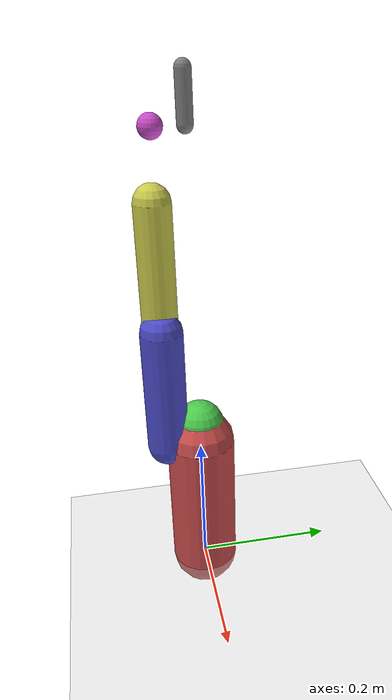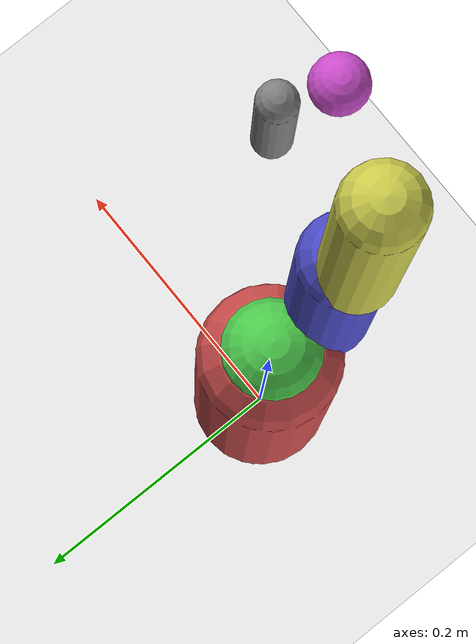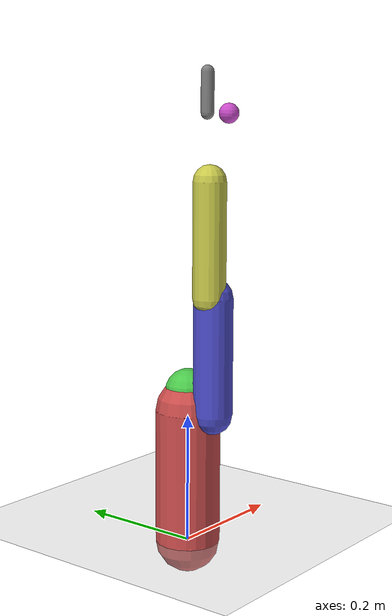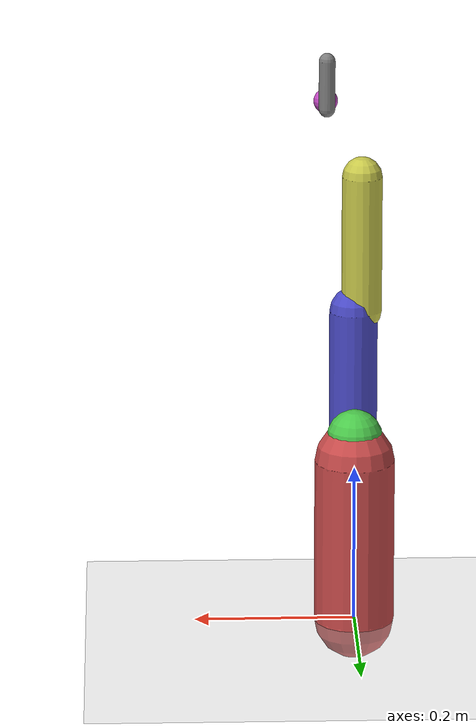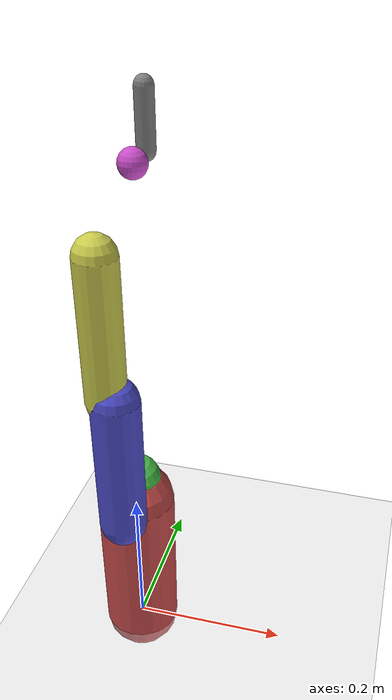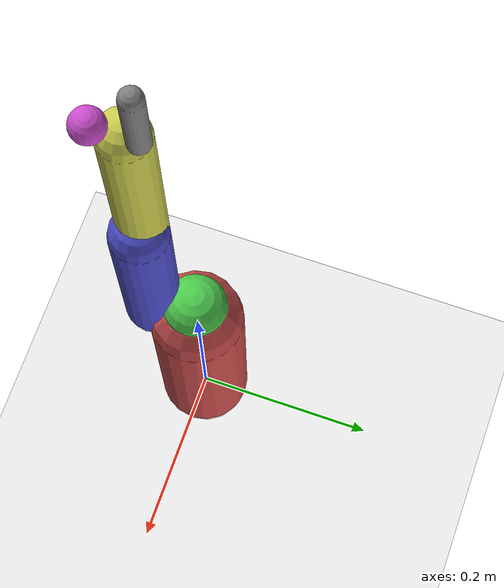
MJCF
<mujoco model="MyCobot Pro 450">
  <compiler angle="degree"/>

  <default>
    <geom type="capsule" density="1000"/>
  </default>

  <worldbody>
    <light pos="1 1 2" diffuse="1 1 1"/>
    <geom name="floor" type="plane" size="1 1 0.1" rgba=".8 .8 .8 1"/>

    <!-- Base: height 210mm from URDF -->
    <body name="base" pos="0 0 0">
      <geom name="base_col" fromto="0 0 0 0 0 0.210" size="0.05" rgba=".8 .3 .3 1"/>

      <!-- J1 joint (Z-axis rotation) at top of base -->
      <body name="link1" pos="0 0 0.210">
        <geom name="j1" pos="0 0 0.03" size="0.035" type="sphere" rgba=".3 .8 .3 1"/>
        <joint name="joint1" type="hinge" axis="0 0 1" limited="true" range="-162 162"/>

        <!-- J2: shoulder offset (0, -48, 0) from URDF -->
        <body name="link2" pos="0 -0.048 0">
          <geom name="upper_arm" fromto="0 0 0 0 0 0.180" size="0.03" rgba=".3 .3 .8 1"/>
          <joint name="joint2" type="hinge" axis="0 1 0" limited="true" range="-125 125"/>

          <!-- J3: elbow at top of upper arm -->
          <body name="link3" pos="-0.010 0 0.180">
            <geom name="forearm" fromto="0 0 0 0 0 0.173" size="0.025" rgba=".8 .8 .3 1"/>
            <joint name="joint3" type="hinge" axis="0 1 0" limited="true" range="-154 154"/>

            <!-- J4: wrist at top of forearm -->
            <body name="link4" pos="0 0 0.173">
              <geom name="wrist" size="0.02" type="sphere" rgba=".3 .8 .8 1"/>
              <joint name="joint4" type="hinge" axis="1 0 0" limited="true" range="-162 162"/>

              <!-- J5: wrist pitch -->
              <body name="link5" pos="0.0455 0 0.097">
                <geom name="wrist_pitch" size="0.015" type="sphere" rgba=".8 .3 .8 1"/>
                <joint name="joint5" type="hinge" axis="0 1 0" limited="true" range="-162 162"/>

                <!-- J6 + end effector -->
                <body name="link6" pos="0 0.040 0">
                  <geom name="end" fromto="0 0 0 0 0 0.06" size="0.01" rgba=".5 .5 .5 1"/>
                  <joint name="joint6" type="hinge" axis="1 0 0" limited="true" range="-165 165"/>
                </body>
              </body>
            </body>
          </body>
        </body>
      </body>
    </body>
  </worldbody>
</mujoco>
